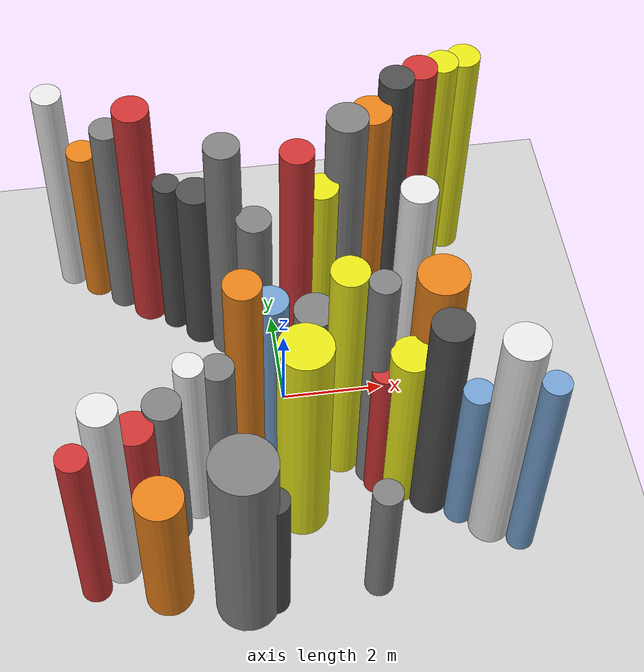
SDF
<?xml version='1.0'?>
<sdf version='1.6'>
  <world name='routeA_rl_v1__dense_recovery__rl_test__bottleneck_corridor__000113'>
    <!-- Sun light -->
    <light name='sun' type='directional'>
      <cast_shadows>1</cast_shadows>
      <pose>0 0 10 0 0 0</pose>
      <diffuse>0.8 0.8 0.8 1</diffuse>
      <specular>0.2 0.2 0.2 1</specular>
      <attenuation>
        <range>1000</range>
        <constant>0.9</constant>
        <linear>0.01</linear>
        <quadratic>0.001</quadratic>
      </attenuation>
      <direction>-0.5 0.1 -0.9</direction>
    </light>

    <!-- Ground plane -->
    <model name='ground_plane'>
      <static>1</static>
      <link name='link'>
        <collision name='collision'>
          <geometry>
            <plane>
              <normal>0 0 1</normal>
              <size>100 100</size>
            </plane>
          </geometry>
          <surface>
            <contact>
              <collide_bitmask>65535</collide_bitmask>
              <ode/>
            </contact>
            <friction>
              <ode>
                <mu>100</mu>
                <mu2>50</mu2>
              </ode>
              <torsional><ode/></torsional>
            </friction>
            <bounce/>
          </surface>
          <max_contacts>10</max_contacts>
        </collision>
        <visual name='visual'>
          <cast_shadows>0</cast_shadows>
          <geometry>
            <plane>
              <normal>0 0 1</normal>
              <size>100 100</size>
            </plane>
          </geometry>
          <material>
            <script>
              <uri>file://media/materials/scripts/gazebo.material</uri>
              <n>Gazebo/Grey</n>
            </script>
          </material>
        </visual>
      </link>
    </model>

    <!-- Environment -->
    <magnetic_field>6e-06 2.3e-05 -4.2e-05</magnetic_field>
    <atmosphere type='adiabatic'/>
    <physics name='default_physics' default='0' type='ode'>
      <gravity>0 0 -9.8</gravity>
      <max_step_size>0.004</max_step_size>
      <real_time_factor>1</real_time_factor>
      <real_time_update_rate>250</real_time_update_rate>
    </physics>
    <scene>
      <ambient>0.4 0.4 0.4 1</ambient>
      <background>0.7 0.7 0.7 1</background>
      <shadows>1</shadows>
    </scene>
    <wind/>
    <spherical_coordinates>
      <surface_model>EARTH_WGS84</surface_model>
      <latitude_deg>0</latitude_deg>
      <longitude_deg>0</longitude_deg>
      <elevation>0</elevation>
      <heading_deg>0</heading_deg>
    </spherical_coordinates>

    <!-- ============ OBSTACLES (40) ============ -->
    <model name='funnel_l_0'>
      <static>1</static>
      <link name='link'>
        <visual name='visual'>
          <geometry>
            <cylinder>
              <radius>0.2833</radius>
              <length>4.5280</length>
            </cylinder>
          </geometry>
          <material>
            <script>
              <n>Gazebo/Red</n>
              <uri>file://media/materials/scripts/gazebo.material</uri>
            </script>
            <ambient>0.8 0.2 0.2 1</ambient>
          </material>
        </visual>
        <collision name='collision'>
          <geometry>
            <cylinder>
              <radius>0.2833</radius>
              <length>4.5280</length>
            </cylinder>
          </geometry>
          <max_contacts>10</max_contacts>
          <surface>
            <contact><ode/></contact>
            <bounce/>
            <friction>
              <ode><mu>1</mu><mu2>1</mu2></ode>
              <torsional><ode/></torsional>
            </friction>
          </surface>
        </collision>
      </link>
      <pose>-4.0000 -3.8000 2.2640 0 0 0.0000</pose>
    </model>

    <model name='funnel_r_0'>
      <static>1</static>
      <link name='link'>
        <visual name='visual'>
          <geometry>
            <cylinder>
              <radius>0.2880</radius>
              <length>5.3108</length>
            </cylinder>
          </geometry>
          <material>
            <script>
              <n>Gazebo/White</n>
              <uri>file://media/materials/scripts/gazebo.material</uri>
            </script>
            <ambient>0.9 0.9 0.9 1</ambient>
          </material>
        </visual>
        <collision name='collision'>
          <geometry>
            <cylinder>
              <radius>0.2880</radius>
              <length>5.3108</length>
            </cylinder>
          </geometry>
          <max_contacts>10</max_contacts>
          <surface>
            <contact><ode/></contact>
            <bounce/>
            <friction>
              <ode><mu>1</mu><mu2>1</mu2></ode>
              <torsional><ode/></torsional>
            </friction>
          </surface>
        </collision>
      </link>
      <pose>-4.0000 3.8000 2.6554 0 0 0.0000</pose>
    </model>

    <model name='funnel_l_1'>
      <static>1</static>
      <link name='link'>
        <visual name='visual'>
          <geometry>
            <cylinder>
              <radius>0.3374</radius>
              <length>5.2768</length>
            </cylinder>
          </geometry>
          <material>
            <script>
              <n>Gazebo/White</n>
              <uri>file://media/materials/scripts/gazebo.material</uri>
            </script>
            <ambient>0.9 0.9 0.9 1</ambient>
          </material>
        </visual>
        <collision name='collision'>
          <geometry>
            <cylinder>
              <radius>0.3374</radius>
              <length>5.2768</length>
            </cylinder>
          </geometry>
          <max_contacts>10</max_contacts>
          <surface>
            <contact><ode/></contact>
            <bounce/>
            <friction>
              <ode><mu>1</mu><mu2>1</mu2></ode>
              <torsional><ode/></torsional>
            </friction>
          </surface>
        </collision>
      </link>
      <pose>-3.4857 -3.4286 2.6384 0 0 0.0000</pose>
    </model>

    <model name='funnel_r_1'>
      <static>1</static>
      <link name='link'>
        <visual name='visual'>
          <geometry>
            <cylinder>
              <radius>0.2933</radius>
              <length>4.1016</length>
            </cylinder>
          </geometry>
          <material>
            <script>
              <n>Gazebo/Orange</n>
              <uri>file://media/materials/scripts/gazebo.material</uri>
            </script>
            <ambient>0.9 0.5 0.1 1</ambient>
          </material>
        </visual>
        <collision name='collision'>
          <geometry>
            <cylinder>
              <radius>0.2933</radius>
              <length>4.1016</length>
            </cylinder>
          </geometry>
          <max_contacts>10</max_contacts>
          <surface>
            <contact><ode/></contact>
            <bounce/>
            <friction>
              <ode><mu>1</mu><mu2>1</mu2></ode>
              <torsional><ode/></torsional>
            </friction>
          </surface>
        </collision>
      </link>
      <pose>-3.4857 3.4286 2.0508 0 0 0.0000</pose>
    </model>

    <model name='funnel_l_2'>
      <static>1</static>
      <link name='link'>
        <visual name='visual'>
          <geometry>
            <cylinder>
              <radius>0.3577</radius>
              <length>4.0748</length>
            </cylinder>
          </geometry>
          <material>
            <script>
              <n>Gazebo/Red</n>
              <uri>file://media/materials/scripts/gazebo.material</uri>
            </script>
            <ambient>0.8 0.2 0.2 1</ambient>
          </material>
        </visual>
        <collision name='collision'>
          <geometry>
            <cylinder>
              <radius>0.3577</radius>
              <length>4.0748</length>
            </cylinder>
          </geometry>
          <max_contacts>10</max_contacts>
          <surface>
            <contact><ode/></contact>
            <bounce/>
            <friction>
              <ode><mu>1</mu><mu2>1</mu2></ode>
              <torsional><ode/></torsional>
            </friction>
          </surface>
        </collision>
      </link>
      <pose>-2.9714 -3.0571 2.0374 0 0 0.0000</pose>
    </model>

    <model name='funnel_r_2'>
      <static>1</static>
      <link name='link'>
        <visual name='visual'>
          <geometry>
            <cylinder>
              <radius>0.2959</radius>
              <length>5.0124</length>
            </cylinder>
          </geometry>
          <material>
            <script>
              <n>Gazebo/Grey</n>
              <uri>file://media/materials/scripts/gazebo.material</uri>
            </script>
            <ambient>0.5 0.5 0.5 1</ambient>
          </material>
        </visual>
        <collision name='collision'>
          <geometry>
            <cylinder>
              <radius>0.2959</radius>
              <length>5.0124</length>
            </cylinder>
          </geometry>
          <max_contacts>10</max_contacts>
          <surface>
            <contact><ode/></contact>
            <bounce/>
            <friction>
              <ode><mu>1</mu><mu2>1</mu2></ode>
              <torsional><ode/></torsional>
            </friction>
          </surface>
        </collision>
      </link>
      <pose>-2.9714 3.0571 2.5062 0 0 0.0000</pose>
    </model>

    <model name='funnel_l_3'>
      <static>1</static>
      <link name='link'>
        <visual name='visual'>
          <geometry>
            <cylinder>
              <radius>0.3447</radius>
              <length>4.1564</length>
            </cylinder>
          </geometry>
          <material>
            <script>
              <n>Gazebo/Grey</n>
              <uri>file://media/materials/scripts/gazebo.material</uri>
            </script>
            <ambient>0.5 0.5 0.5 1</ambient>
          </material>
        </visual>
        <collision name='collision'>
          <geometry>
            <cylinder>
              <radius>0.3447</radius>
              <length>4.1564</length>
            </cylinder>
          </geometry>
          <max_contacts>10</max_contacts>
          <surface>
            <contact><ode/></contact>
            <bounce/>
            <friction>
              <ode><mu>1</mu><mu2>1</mu2></ode>
              <torsional><ode/></torsional>
            </friction>
          </surface>
        </collision>
      </link>
      <pose>-2.4571 -2.6857 2.0782 0 0 0.0000</pose>
    </model>

    <model name='funnel_r_3'>
      <static>1</static>
      <link name='link'>
        <visual name='visual'>
          <geometry>
            <cylinder>
              <radius>0.3477</radius>
              <length>5.8277</length>
            </cylinder>
          </geometry>
          <material>
            <script>
              <n>Gazebo/Red</n>
              <uri>file://media/materials/scripts/gazebo.material</uri>
            </script>
            <ambient>0.8 0.2 0.2 1</ambient>
          </material>
        </visual>
        <collision name='collision'>
          <geometry>
            <cylinder>
              <radius>0.3477</radius>
              <length>5.8277</length>
            </cylinder>
          </geometry>
          <max_contacts>10</max_contacts>
          <surface>
            <contact><ode/></contact>
            <bounce/>
            <friction>
              <ode><mu>1</mu><mu2>1</mu2></ode>
              <torsional><ode/></torsional>
            </friction>
          </surface>
        </collision>
      </link>
      <pose>-2.4571 2.6857 2.9139 0 0 0.0000</pose>
    </model>

    <model name='funnel_l_4'>
      <static>1</static>
      <link name='link'>
        <visual name='visual'>
          <geometry>
            <cylinder>
              <radius>0.2704</radius>
              <length>4.6730</length>
            </cylinder>
          </geometry>
          <material>
            <script>
              <n>Gazebo/White</n>
              <uri>file://media/materials/scripts/gazebo.material</uri>
            </script>
            <ambient>0.9 0.9 0.9 1</ambient>
          </material>
        </visual>
        <collision name='collision'>
          <geometry>
            <cylinder>
              <radius>0.2704</radius>
              <length>4.6730</length>
            </cylinder>
          </geometry>
          <max_contacts>10</max_contacts>
          <surface>
            <contact><ode/></contact>
            <bounce/>
            <friction>
              <ode><mu>1</mu><mu2>1</mu2></ode>
              <torsional><ode/></torsional>
            </friction>
          </surface>
        </collision>
      </link>
      <pose>-1.9429 -2.3143 2.3365 0 0 0.0000</pose>
    </model>

    <model name='funnel_r_4'>
      <static>1</static>
      <link name='link'>
        <visual name='visual'>
          <geometry>
            <cylinder>
              <radius>0.2570</radius>
              <length>4.1656</length>
            </cylinder>
          </geometry>
          <material>
            <script>
              <n>Gazebo/DarkGrey</n>
              <uri>file://media/materials/scripts/gazebo.material</uri>
            </script>
            <ambient>0.3 0.3 0.3 1</ambient>
          </material>
        </visual>
        <collision name='collision'>
          <geometry>
            <cylinder>
              <radius>0.2570</radius>
              <length>4.1656</length>
            </cylinder>
          </geometry>
          <max_contacts>10</max_contacts>
          <surface>
            <contact><ode/></contact>
            <bounce/>
            <friction>
              <ode><mu>1</mu><mu2>1</mu2></ode>
              <torsional><ode/></torsional>
            </friction>
          </surface>
        </collision>
      </link>
      <pose>-1.9429 2.3143 2.0828 0 0 0.0000</pose>
    </model>

    <model name='funnel_l_5'>
      <static>1</static>
      <link name='link'>
        <visual name='visual'>
          <geometry>
            <cylinder>
              <radius>0.3040</radius>
              <length>4.0047</length>
            </cylinder>
          </geometry>
          <material>
            <script>
              <n>Gazebo/Grey</n>
              <uri>file://media/materials/scripts/gazebo.material</uri>
            </script>
            <ambient>0.5 0.5 0.5 1</ambient>
          </material>
        </visual>
        <collision name='collision'>
          <geometry>
            <cylinder>
              <radius>0.3040</radius>
              <length>4.0047</length>
            </cylinder>
          </geometry>
          <max_contacts>10</max_contacts>
          <surface>
            <contact><ode/></contact>
            <bounce/>
            <friction>
              <ode><mu>1</mu><mu2>1</mu2></ode>
              <torsional><ode/></torsional>
            </friction>
          </surface>
        </collision>
      </link>
      <pose>-1.4286 -1.9429 2.0023 0 0 0.0000</pose>
    </model>

    <model name='funnel_r_5'>
      <static>1</static>
      <link name='link'>
        <visual name='visual'>
          <geometry>
            <cylinder>
              <radius>0.3518</radius>
              <length>4.2839</length>
            </cylinder>
          </geometry>
          <material>
            <script>
              <n>Gazebo/DarkGrey</n>
              <uri>file://media/materials/scripts/gazebo.material</uri>
            </script>
            <ambient>0.3 0.3 0.3 1</ambient>
          </material>
        </visual>
        <collision name='collision'>
          <geometry>
            <cylinder>
              <radius>0.3518</radius>
              <length>4.2839</length>
            </cylinder>
          </geometry>
          <max_contacts>10</max_contacts>
          <surface>
            <contact><ode/></contact>
            <bounce/>
            <friction>
              <ode><mu>1</mu><mu2>1</mu2></ode>
              <torsional><ode/></torsional>
            </friction>
          </surface>
        </collision>
      </link>
      <pose>-1.4286 1.9429 2.1420 0 0 0.0000</pose>
    </model>

    <model name='funnel_l_6'>
      <static>1</static>
      <link name='link'>
        <visual name='visual'>
          <geometry>
            <cylinder>
              <radius>0.3406</radius>
              <length>5.7488</length>
            </cylinder>
          </geometry>
          <material>
            <script>
              <n>Gazebo/Orange</n>
              <uri>file://media/materials/scripts/gazebo.material</uri>
            </script>
            <ambient>0.9 0.5 0.1 1</ambient>
          </material>
        </visual>
        <collision name='collision'>
          <geometry>
            <cylinder>
              <radius>0.3406</radius>
              <length>5.7488</length>
            </cylinder>
          </geometry>
          <max_contacts>10</max_contacts>
          <surface>
            <contact><ode/></contact>
            <bounce/>
            <friction>
              <ode><mu>1</mu><mu2>1</mu2></ode>
              <torsional><ode/></torsional>
            </friction>
          </surface>
        </collision>
      </link>
      <pose>-0.9143 -1.5714 2.8744 0 0 0.0000</pose>
    </model>

    <model name='funnel_r_6'>
      <static>1</static>
      <link name='link'>
        <visual name='visual'>
          <geometry>
            <cylinder>
              <radius>0.3385</radius>
              <length>5.8091</length>
            </cylinder>
          </geometry>
          <material>
            <script>
              <n>Gazebo/Grey</n>
              <uri>file://media/materials/scripts/gazebo.material</uri>
            </script>
            <ambient>0.5 0.5 0.5 1</ambient>
          </material>
        </visual>
        <collision name='collision'>
          <geometry>
            <cylinder>
              <radius>0.3385</radius>
              <length>5.8091</length>
            </cylinder>
          </geometry>
          <max_contacts>10</max_contacts>
          <surface>
            <contact><ode/></contact>
            <bounce/>
            <friction>
              <ode><mu>1</mu><mu2>1</mu2></ode>
              <torsional><ode/></torsional>
            </friction>
          </surface>
        </collision>
      </link>
      <pose>-0.9143 1.5714 2.9045 0 0 0.0000</pose>
    </model>

    <model name='funnel_l_7'>
      <static>1</static>
      <link name='link'>
        <visual name='visual'>
          <geometry>
            <cylinder>
              <radius>0.3335</radius>
              <length>4.7666</length>
            </cylinder>
          </geometry>
          <material>
            <script>
              <n>Gazebo/Blue</n>
              <uri>file://media/materials/scripts/gazebo.material</uri>
            </script>
            <ambient>0.447 0.624 0.812 1</ambient>
          </material>
        </visual>
        <collision name='collision'>
          <geometry>
            <cylinder>
              <radius>0.3335</radius>
              <length>4.7666</length>
            </cylinder>
          </geometry>
          <max_contacts>10</max_contacts>
          <surface>
            <contact><ode/></contact>
            <bounce/>
            <friction>
              <ode><mu>1</mu><mu2>1</mu2></ode>
              <torsional><ode/></torsional>
            </friction>
          </surface>
        </collision>
      </link>
      <pose>-0.4000 -1.2000 2.3833 0 0 0.0000</pose>
    </model>

    <model name='funnel_r_7'>
      <static>1</static>
      <link name='link'>
        <visual name='visual'>
          <geometry>
            <cylinder>
              <radius>0.3387</radius>
              <length>4.1677</length>
            </cylinder>
          </geometry>
          <material>
            <script>
              <n>Gazebo/Grey</n>
              <uri>file://media/materials/scripts/gazebo.material</uri>
            </script>
            <ambient>0.5 0.5 0.5 1</ambient>
          </material>
        </visual>
        <collision name='collision'>
          <geometry>
            <cylinder>
              <radius>0.3387</radius>
              <length>4.1677</length>
            </cylinder>
          </geometry>
          <max_contacts>10</max_contacts>
          <surface>
            <contact><ode/></contact>
            <bounce/>
            <friction>
              <ode><mu>1</mu><mu2>1</mu2></ode>
              <torsional><ode/></torsional>
            </friction>
          </surface>
        </collision>
      </link>
      <pose>-0.4000 1.2000 2.0838 0 0 0.0000</pose>
    </model>

    <model name='funnel_out_l_0'>
      <static>1</static>
      <link name='link'>
        <visual name='visual'>
          <geometry>
            <cylinder>
              <radius>0.3893</radius>
              <length>4.3590</length>
            </cylinder>
          </geometry>
          <material>
            <script>
              <n>Gazebo/Grey</n>
              <uri>file://media/materials/scripts/gazebo.material</uri>
            </script>
            <ambient>0.5 0.5 0.5 1</ambient>
          </material>
        </visual>
        <collision name='collision'>
          <geometry>
            <cylinder>
              <radius>0.3893</radius>
              <length>4.3590</length>
            </cylinder>
          </geometry>
          <max_contacts>10</max_contacts>
          <surface>
            <contact><ode/></contact>
            <bounce/>
            <friction>
              <ode><mu>1</mu><mu2>1</mu2></ode>
              <torsional><ode/></torsional>
            </friction>
          </surface>
        </collision>
      </link>
      <pose>0.4000 -1.2000 2.1795 0 0 0.0000</pose>
    </model>

    <model name='funnel_out_r_0'>
      <static>1</static>
      <link name='link'>
        <visual name='visual'>
          <geometry>
            <cylinder>
              <radius>0.3216</radius>
              <length>5.8618</length>
            </cylinder>
          </geometry>
          <material>
            <script>
              <n>Gazebo/Red</n>
              <uri>file://media/materials/scripts/gazebo.material</uri>
            </script>
            <ambient>0.8 0.2 0.2 1</ambient>
          </material>
        </visual>
        <collision name='collision'>
          <geometry>
            <cylinder>
              <radius>0.3216</radius>
              <length>5.8618</length>
            </cylinder>
          </geometry>
          <max_contacts>10</max_contacts>
          <surface>
            <contact><ode/></contact>
            <bounce/>
            <friction>
              <ode><mu>1</mu><mu2>1</mu2></ode>
              <torsional><ode/></torsional>
            </friction>
          </surface>
        </collision>
      </link>
      <pose>0.4000 1.2000 2.9309 0 0 0.0000</pose>
    </model>

    <model name='funnel_out_l_1'>
      <static>1</static>
      <link name='link'>
        <visual name='visual'>
          <geometry>
            <cylinder>
              <radius>0.3434</radius>
              <length>5.8014</length>
            </cylinder>
          </geometry>
          <material>
            <script>
              <n>Gazebo/Yellow</n>
              <uri>file://media/materials/scripts/gazebo.material</uri>
            </script>
            <ambient>0.9 0.9 0.1 1</ambient>
          </material>
        </visual>
        <collision name='collision'>
          <geometry>
            <cylinder>
              <radius>0.3434</radius>
              <length>5.8014</length>
            </cylinder>
          </geometry>
          <max_contacts>10</max_contacts>
          <surface>
            <contact><ode/></contact>
            <bounce/>
            <friction>
              <ode><mu>1</mu><mu2>1</mu2></ode>
              <torsional><ode/></torsional>
            </friction>
          </surface>
        </collision>
      </link>
      <pose>0.9143 -1.5714 2.9007 0 0 0.0000</pose>
    </model>

    <model name='funnel_out_r_1'>
      <static>1</static>
      <link name='link'>
        <visual name='visual'>
          <geometry>
            <cylinder>
              <radius>0.3361</radius>
              <length>4.4698</length>
            </cylinder>
          </geometry>
          <material>
            <script>
              <n>Gazebo/Yellow</n>
              <uri>file://media/materials/scripts/gazebo.material</uri>
            </script>
            <ambient>0.9 0.9 0.1 1</ambient>
          </material>
        </visual>
        <collision name='collision'>
          <geometry>
            <cylinder>
              <radius>0.3361</radius>
              <length>4.4698</length>
            </cylinder>
          </geometry>
          <max_contacts>10</max_contacts>
          <surface>
            <contact><ode/></contact>
            <bounce/>
            <friction>
              <ode><mu>1</mu><mu2>1</mu2></ode>
              <torsional><ode/></torsional>
            </friction>
          </surface>
        </collision>
      </link>
      <pose>0.9143 1.5714 2.2349 0 0 0.0000</pose>
    </model>

    <model name='funnel_out_l_2'>
      <static>1</static>
      <link name='link'>
        <visual name='visual'>
          <geometry>
            <cylinder>
              <radius>0.2700</radius>
              <length>5.8936</length>
            </cylinder>
          </geometry>
          <material>
            <script>
              <n>Gazebo/Grey</n>
              <uri>file://media/materials/scripts/gazebo.material</uri>
            </script>
            <ambient>0.5 0.5 0.5 1</ambient>
          </material>
        </visual>
        <collision name='collision'>
          <geometry>
            <cylinder>
              <radius>0.2700</radius>
              <length>5.8936</length>
            </cylinder>
          </geometry>
          <max_contacts>10</max_contacts>
          <surface>
            <contact><ode/></contact>
            <bounce/>
            <friction>
              <ode><mu>1</mu><mu2>1</mu2></ode>
              <torsional><ode/></torsional>
            </friction>
          </surface>
        </collision>
      </link>
      <pose>1.4286 -1.9429 2.9468 0 0 0.0000</pose>
    </model>

    <model name='funnel_out_r_2'>
      <static>1</static>
      <link name='link'>
        <visual name='visual'>
          <geometry>
            <cylinder>
              <radius>0.3931</radius>
              <length>5.8287</length>
            </cylinder>
          </geometry>
          <material>
            <script>
              <n>Gazebo/Grey</n>
              <uri>file://media/materials/scripts/gazebo.material</uri>
            </script>
            <ambient>0.5 0.5 0.5 1</ambient>
          </material>
        </visual>
        <collision name='collision'>
          <geometry>
            <cylinder>
              <radius>0.3931</radius>
              <length>5.8287</length>
            </cylinder>
          </geometry>
          <max_contacts>10</max_contacts>
          <surface>
            <contact><ode/></contact>
            <bounce/>
            <friction>
              <ode><mu>1</mu><mu2>1</mu2></ode>
              <torsional><ode/></torsional>
            </friction>
          </surface>
        </collision>
      </link>
      <pose>1.4286 1.9429 2.9143 0 0 0.0000</pose>
    </model>

    <model name='funnel_out_l_3'>
      <static>1</static>
      <link name='link'>
        <visual name='visual'>
          <geometry>
            <cylinder>
              <radius>0.3924</radius>
              <length>4.2811</length>
            </cylinder>
          </geometry>
          <material>
            <script>
              <n>Gazebo/Yellow</n>
              <uri>file://media/materials/scripts/gazebo.material</uri>
            </script>
            <ambient>0.9 0.9 0.1 1</ambient>
          </material>
        </visual>
        <collision name='collision'>
          <geometry>
            <cylinder>
              <radius>0.3924</radius>
              <length>4.2811</length>
            </cylinder>
          </geometry>
          <max_contacts>10</max_contacts>
          <surface>
            <contact><ode/></contact>
            <bounce/>
            <friction>
              <ode><mu>1</mu><mu2>1</mu2></ode>
              <torsional><ode/></torsional>
            </friction>
          </surface>
        </collision>
      </link>
      <pose>1.9429 -2.3143 2.1406 0 0 0.0000</pose>
    </model>

    <model name='funnel_out_r_3'>
      <static>1</static>
      <link name='link'>
        <visual name='visual'>
          <geometry>
            <cylinder>
              <radius>0.3870</radius>
              <length>5.5773</length>
            </cylinder>
          </geometry>
          <material>
            <script>
              <n>Gazebo/Orange</n>
              <uri>file://media/materials/scripts/gazebo.material</uri>
            </script>
            <ambient>0.9 0.5 0.1 1</ambient>
          </material>
        </visual>
        <collision name='collision'>
          <geometry>
            <cylinder>
              <radius>0.3870</radius>
              <length>5.5773</length>
            </cylinder>
          </geometry>
          <max_contacts>10</max_contacts>
          <surface>
            <contact><ode/></contact>
            <bounce/>
            <friction>
              <ode><mu>1</mu><mu2>1</mu2></ode>
              <torsional><ode/></torsional>
            </friction>
          </surface>
        </collision>
      </link>
      <pose>1.9429 2.3143 2.7887 0 0 0.0000</pose>
    </model>

    <model name='funnel_out_l_4'>
      <static>1</static>
      <link name='link'>
        <visual name='visual'>
          <geometry>
            <cylinder>
              <radius>0.3676</radius>
              <length>5.5056</length>
            </cylinder>
          </geometry>
          <material>
            <script>
              <n>Gazebo/DarkGrey</n>
              <uri>file://media/materials/scripts/gazebo.material</uri>
            </script>
            <ambient>0.3 0.3 0.3 1</ambient>
          </material>
        </visual>
        <collision name='collision'>
          <geometry>
            <cylinder>
              <radius>0.3676</radius>
              <length>5.5056</length>
            </cylinder>
          </geometry>
          <max_contacts>10</max_contacts>
          <surface>
            <contact><ode/></contact>
            <bounce/>
            <friction>
              <ode><mu>1</mu><mu2>1</mu2></ode>
              <torsional><ode/></torsional>
            </friction>
          </surface>
        </collision>
      </link>
      <pose>2.4571 -2.6857 2.7528 0 0 0.0000</pose>
    </model>

    <model name='funnel_out_r_4'>
      <static>1</static>
      <link name='link'>
        <visual name='visual'>
          <geometry>
            <cylinder>
              <radius>0.3275</radius>
              <length>5.9836</length>
            </cylinder>
          </geometry>
          <material>
            <script>
              <n>Gazebo/DarkGrey</n>
              <uri>file://media/materials/scripts/gazebo.material</uri>
            </script>
            <ambient>0.3 0.3 0.3 1</ambient>
          </material>
        </visual>
        <collision name='collision'>
          <geometry>
            <cylinder>
              <radius>0.3275</radius>
              <length>5.9836</length>
            </cylinder>
          </geometry>
          <max_contacts>10</max_contacts>
          <surface>
            <contact><ode/></contact>
            <bounce/>
            <friction>
              <ode><mu>1</mu><mu2>1</mu2></ode>
              <torsional><ode/></torsional>
            </friction>
          </surface>
        </collision>
      </link>
      <pose>2.4571 2.6857 2.9918 0 0 0.0000</pose>
    </model>

    <model name='funnel_out_l_5'>
      <static>1</static>
      <link name='link'>
        <visual name='visual'>
          <geometry>
            <cylinder>
              <radius>0.2790</radius>
              <length>4.0133</length>
            </cylinder>
          </geometry>
          <material>
            <script>
              <n>Gazebo/Blue</n>
              <uri>file://media/materials/scripts/gazebo.material</uri>
            </script>
            <ambient>0.447 0.624 0.812 1</ambient>
          </material>
        </visual>
        <collision name='collision'>
          <geometry>
            <cylinder>
              <radius>0.2790</radius>
              <length>4.0133</length>
            </cylinder>
          </geometry>
          <max_contacts>10</max_contacts>
          <surface>
            <contact><ode/></contact>
            <bounce/>
            <friction>
              <ode><mu>1</mu><mu2>1</mu2></ode>
              <torsional><ode/></torsional>
            </friction>
          </surface>
        </collision>
      </link>
      <pose>2.9714 -3.0571 2.0067 0 0 0.0000</pose>
    </model>

    <model name='funnel_out_r_5'>
      <static>1</static>
      <link name='link'>
        <visual name='visual'>
          <geometry>
            <cylinder>
              <radius>0.3343</radius>
              <length>5.8174</length>
            </cylinder>
          </geometry>
          <material>
            <script>
              <n>Gazebo/Red</n>
              <uri>file://media/materials/scripts/gazebo.material</uri>
            </script>
            <ambient>0.8 0.2 0.2 1</ambient>
          </material>
        </visual>
        <collision name='collision'>
          <geometry>
            <cylinder>
              <radius>0.3343</radius>
              <length>5.8174</length>
            </cylinder>
          </geometry>
          <max_contacts>10</max_contacts>
          <surface>
            <contact><ode/></contact>
            <bounce/>
            <friction>
              <ode><mu>1</mu><mu2>1</mu2></ode>
              <torsional><ode/></torsional>
            </friction>
          </surface>
        </collision>
      </link>
      <pose>2.9714 3.0571 2.9087 0 0 0.0000</pose>
    </model>

    <model name='funnel_out_l_6'>
      <static>1</static>
      <link name='link'>
        <visual name='visual'>
          <geometry>
            <cylinder>
              <radius>0.3973</radius>
              <length>5.8593</length>
            </cylinder>
          </geometry>
          <material>
            <script>
              <n>Gazebo/White</n>
              <uri>file://media/materials/scripts/gazebo.material</uri>
            </script>
            <ambient>0.9 0.9 0.9 1</ambient>
          </material>
        </visual>
        <collision name='collision'>
          <geometry>
            <cylinder>
              <radius>0.3973</radius>
              <length>5.8593</length>
            </cylinder>
          </geometry>
          <max_contacts>10</max_contacts>
          <surface>
            <contact><ode/></contact>
            <bounce/>
            <friction>
              <ode><mu>1</mu><mu2>1</mu2></ode>
              <torsional><ode/></torsional>
            </friction>
          </surface>
        </collision>
      </link>
      <pose>3.4857 -3.4286 2.9297 0 0 0.0000</pose>
    </model>

    <model name='funnel_out_r_6'>
      <static>1</static>
      <link name='link'>
        <visual name='visual'>
          <geometry>
            <cylinder>
              <radius>0.3103</radius>
              <length>5.5571</length>
            </cylinder>
          </geometry>
          <material>
            <script>
              <n>Gazebo/Yellow</n>
              <uri>file://media/materials/scripts/gazebo.material</uri>
            </script>
            <ambient>0.9 0.9 0.1 1</ambient>
          </material>
        </visual>
        <collision name='collision'>
          <geometry>
            <cylinder>
              <radius>0.3103</radius>
              <length>5.5571</length>
            </cylinder>
          </geometry>
          <max_contacts>10</max_contacts>
          <surface>
            <contact><ode/></contact>
            <bounce/>
            <friction>
              <ode><mu>1</mu><mu2>1</mu2></ode>
              <torsional><ode/></torsional>
            </friction>
          </surface>
        </collision>
      </link>
      <pose>3.4857 3.4286 2.7786 0 0 0.0000</pose>
    </model>

    <model name='funnel_out_l_7'>
      <static>1</static>
      <link name='link'>
        <visual name='visual'>
          <geometry>
            <cylinder>
              <radius>0.2568</radius>
              <length>5.1278</length>
            </cylinder>
          </geometry>
          <material>
            <script>
              <n>Gazebo/Blue</n>
              <uri>file://media/materials/scripts/gazebo.material</uri>
            </script>
            <ambient>0.447 0.624 0.812 1</ambient>
          </material>
        </visual>
        <collision name='collision'>
          <geometry>
            <cylinder>
              <radius>0.2568</radius>
              <length>5.1278</length>
            </cylinder>
          </geometry>
          <max_contacts>10</max_contacts>
          <surface>
            <contact><ode/></contact>
            <bounce/>
            <friction>
              <ode><mu>1</mu><mu2>1</mu2></ode>
              <torsional><ode/></torsional>
            </friction>
          </surface>
        </collision>
      </link>
      <pose>4.0000 -3.8000 2.5639 0 0 0.0000</pose>
    </model>

    <model name='funnel_out_r_7'>
      <static>1</static>
      <link name='link'>
        <visual name='visual'>
          <geometry>
            <cylinder>
              <radius>0.3244</radius>
              <length>5.3010</length>
            </cylinder>
          </geometry>
          <material>
            <script>
              <n>Gazebo/Yellow</n>
              <uri>file://media/materials/scripts/gazebo.material</uri>
            </script>
            <ambient>0.9 0.9 0.1 1</ambient>
          </material>
        </visual>
        <collision name='collision'>
          <geometry>
            <cylinder>
              <radius>0.3244</radius>
              <length>5.3010</length>
            </cylinder>
          </geometry>
          <max_contacts>10</max_contacts>
          <surface>
            <contact><ode/></contact>
            <bounce/>
            <friction>
              <ode><mu>1</mu><mu2>1</mu2></ode>
              <torsional><ode/></torsional>
            </friction>
          </surface>
        </collision>
      </link>
      <pose>4.0000 3.8000 2.6505 0 0 0.0000</pose>
    </model>

    <model name='bn_scatter_0'>
      <static>1</static>
      <link name='link'>
        <visual name='visual'>
          <geometry>
            <cylinder>
              <radius>0.4437</radius>
              <length>3.4634</length>
            </cylinder>
          </geometry>
          <material>
            <script>
              <n>Gazebo/Orange</n>
              <uri>file://media/materials/scripts/gazebo.material</uri>
            </script>
            <ambient>0.9 0.5 0.1 1</ambient>
          </material>
        </visual>
        <collision name='collision'>
          <geometry>
            <cylinder>
              <radius>0.4437</radius>
              <length>3.4634</length>
            </cylinder>
          </geometry>
          <max_contacts>10</max_contacts>
          <surface>
            <contact><ode/></contact>
            <bounce/>
            <friction>
              <ode><mu>1</mu><mu2>1</mu2></ode>
              <torsional><ode/></torsional>
            </friction>
          </surface>
        </collision>
      </link>
      <pose>-2.6735 -4.0986 1.7317 0 0 0.0000</pose>
    </model>

    <model name='bn_scatter_1'>
      <static>1</static>
      <link name='link'>
        <visual name='visual'>
          <geometry>
            <cylinder>
              <radius>0.5934</radius>
              <length>4.7754</length>
            </cylinder>
          </geometry>
          <material>
            <script>
              <n>Gazebo/Grey</n>
              <uri>file://media/materials/scripts/gazebo.material</uri>
            </script>
            <ambient>0.5 0.5 0.5 1</ambient>
          </material>
        </visual>
        <collision name='collision'>
          <geometry>
            <cylinder>
              <radius>0.5934</radius>
              <length>4.7754</length>
            </cylinder>
          </geometry>
          <max_contacts>10</max_contacts>
          <surface>
            <contact><ode/></contact>
            <bounce/>
            <friction>
              <ode><mu>1</mu><mu2>1</mu2></ode>
              <torsional><ode/></torsional>
            </friction>
          </surface>
        </collision>
      </link>
      <pose>-1.2556 -4.4411 2.3877 0 0 0.0000</pose>
    </model>

    <model name='bn_scatter_2'>
      <static>1</static>
      <link name='link'>
        <visual name='visual'>
          <geometry>
            <cylinder>
              <radius>0.4512</radius>
              <length>5.7079</length>
            </cylinder>
          </geometry>
          <material>
            <script>
              <n>Gazebo/Orange</n>
              <uri>file://media/materials/scripts/gazebo.material</uri>
            </script>
            <ambient>0.9 0.5 0.1 1</ambient>
          </material>
        </visual>
        <collision name='collision'>
          <geometry>
            <cylinder>
              <radius>0.4512</radius>
              <length>5.7079</length>
            </cylinder>
          </geometry>
          <max_contacts>10</max_contacts>
          <surface>
            <contact><ode/></contact>
            <bounce/>
            <friction>
              <ode><mu>1</mu><mu2>1</mu2></ode>
              <torsional><ode/></torsional>
            </friction>
          </surface>
        </collision>
      </link>
      <pose>2.4684 -1.7733 2.8540 0 0 0.0000</pose>
    </model>

    <model name='bn_scatter_3'>
      <static>1</static>
      <link name='link'>
        <visual name='visual'>
          <geometry>
            <cylinder>
              <radius>0.2429</radius>
              <length>3.6805</length>
            </cylinder>
          </geometry>
          <material>
            <script>
              <n>Gazebo/Red</n>
              <uri>file://media/materials/scripts/gazebo.material</uri>
            </script>
            <ambient>0.8 0.2 0.2 1</ambient>
          </material>
        </visual>
        <collision name='collision'>
          <geometry>
            <cylinder>
              <radius>0.2429</radius>
              <length>3.6805</length>
            </cylinder>
          </geometry>
          <max_contacts>10</max_contacts>
          <surface>
            <contact><ode/></contact>
            <bounce/>
            <friction>
              <ode><mu>1</mu><mu2>1</mu2></ode>
              <torsional><ode/></torsional>
            </friction>
          </surface>
        </collision>
      </link>
      <pose>1.5125 -2.2261 1.8402 0 0 0.0000</pose>
    </model>

    <model name='bn_scatter_4'>
      <static>1</static>
      <link name='link'>
        <visual name='visual'>
          <geometry>
            <cylinder>
              <radius>0.2848</radius>
              <length>3.5828</length>
            </cylinder>
          </geometry>
          <material>
            <script>
              <n>Gazebo/DarkGrey</n>
              <uri>file://media/materials/scripts/gazebo.material</uri>
            </script>
            <ambient>0.3 0.3 0.3 1</ambient>
          </material>
        </visual>
        <collision name='collision'>
          <geometry>
            <cylinder>
              <radius>0.2848</radius>
              <length>3.5828</length>
            </cylinder>
          </geometry>
          <max_contacts>10</max_contacts>
          <surface>
            <contact><ode/></contact>
            <bounce/>
            <friction>
              <ode><mu>1</mu><mu2>1</mu2></ode>
              <torsional><ode/></torsional>
            </friction>
          </surface>
        </collision>
      </link>
      <pose>-0.7692 -4.4781 1.7914 0 0 0.0000</pose>
    </model>

    <model name='bn_scatter_5'>
      <static>1</static>
      <link name='link'>
        <visual name='visual'>
          <geometry>
            <cylinder>
              <radius>0.2708</radius>
              <length>3.2703</length>
            </cylinder>
          </geometry>
          <material>
            <script>
              <n>Gazebo/Grey</n>
              <uri>file://media/materials/scripts/gazebo.material</uri>
            </script>
            <ambient>0.5 0.5 0.5 1</ambient>
          </material>
        </visual>
        <collision name='collision'>
          <geometry>
            <cylinder>
              <radius>0.2708</radius>
              <length>3.2703</length>
            </cylinder>
          </geometry>
          <max_contacts>10</max_contacts>
          <surface>
            <contact><ode/></contact>
            <bounce/>
            <friction>
              <ode><mu>1</mu><mu2>1</mu2></ode>
              <torsional><ode/></torsional>
            </friction>
          </surface>
        </collision>
      </link>
      <pose>1.1940 -4.3879 1.6352 0 0 0.0000</pose>
    </model>

    <model name='bn_scatter_6'>
      <static>1</static>
      <link name='link'>
        <visual name='visual'>
          <geometry>
            <cylinder>
              <radius>0.4896</radius>
              <length>5.3726</length>
            </cylinder>
          </geometry>
          <material>
            <script>
              <n>Gazebo/Yellow</n>
              <uri>file://media/materials/scripts/gazebo.material</uri>
            </script>
            <ambient>0.9 0.9 0.1 1</ambient>
          </material>
        </visual>
        <collision name='collision'>
          <geometry>
            <cylinder>
              <radius>0.4896</radius>
              <length>5.3726</length>
            </cylinder>
          </geometry>
          <max_contacts>10</max_contacts>
          <surface>
            <contact><ode/></contact>
            <bounce/>
            <friction>
              <ode><mu>1</mu><mu2>1</mu2></ode>
              <torsional><ode/></torsional>
            </friction>
          </surface>
        </collision>
      </link>
      <pose>0.0017 -2.7007 2.6863 0 0 0.0000</pose>
    </model>

    <model name='bn_scatter_7'>
      <static>1</static>
      <link name='link'>
        <visual name='visual'>
          <geometry>
            <cylinder>
              <radius>0.3398</radius>
              <length>5.8184</length>
            </cylinder>
          </geometry>
          <material>
            <script>
              <n>Gazebo/White</n>
              <uri>file://media/materials/scripts/gazebo.material</uri>
            </script>
            <ambient>0.9 0.9 0.9 1</ambient>
          </material>
        </visual>
        <collision name='collision'>
          <geometry>
            <cylinder>
              <radius>0.3398</radius>
              <length>5.8184</length>
            </cylinder>
          </geometry>
          <max_contacts>10</max_contacts>
          <surface>
            <contact><ode/></contact>
            <bounce/>
            <friction>
              <ode><mu>1</mu><mu2>1</mu2></ode>
              <torsional><ode/></torsional>
            </friction>
          </surface>
        </collision>
      </link>
      <pose>2.3955 0.0660 2.9092 0 0 0.0000</pose>
    </model>

    <!-- GUI camera -->
    <gui fullscreen='0'>
      <camera name='user_camera'>
        <pose>-15 0 18 0 0.85 0.15</pose>
        <view_controller>orbit</view_controller>
        <projection_type>perspective</projection_type>
      </camera>
    </gui>
  </world>
</sdf>
